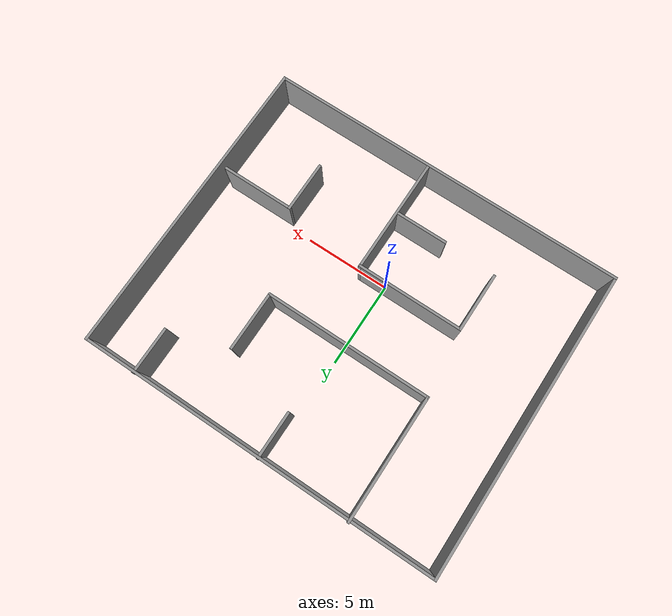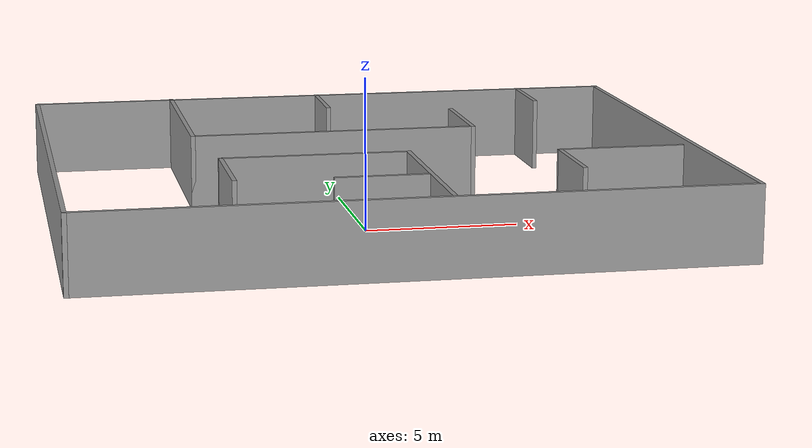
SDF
<?xml version='1.0'?>
<sdf version='1.7'>
  <model name='av_course.world'>
    <pose>0.500921 2.41741 0 0 -0 0</pose>
    <link name='Wall_0'>
      <collision name='Wall_0_Collision'>
        <geometry>
          <box>
            <size>17.75 0.15 2.5</size>
          </box>
        </geometry>
        <pose>0 0 1.25 0 -0 0</pose>
      </collision>
      <visual name='Wall_0_Visual'>
        <pose>0 0 1.25 0 -0 0</pose>
        <geometry>
          <box>
            <size>17.75 0.15 2.5</size>
          </box>
        </geometry>
        <material>
          <script>
            <uri>file://media/materials/scripts/gazebo.material</uri>
            <name>Gazebo/Grey</name>
          </script>
          <ambient>1 1 1 1</ambient>
        </material>
        <meta>
          <layer>0</layer>
        </meta>
      </visual>
      <pose>-10.425 -0.039543 0 0 -0 1.5708</pose>
    </link>
    <link name='Wall_1'>
      <collision name='Wall_1_Collision'>
        <geometry>
          <box>
            <size>21 0.15 2.5</size>
          </box>
        </geometry>
        <pose>0 0 1.25 0 -0 0</pose>
      </collision>
      <visual name='Wall_1_Visual'>
        <pose>0 0 1.25 0 -0 0</pose>
        <geometry>
          <box>
            <size>21 0.15 2.5</size>
          </box>
        </geometry>
        <material>
          <script>
            <uri>file://media/materials/scripts/gazebo.material</uri>
            <name>Gazebo/Grey</name>
          </script>
          <ambient>1 1 1 1</ambient>
        </material>
        <meta>
          <layer>0</layer>
        </meta>
      </visual>
      <pose>-0 8.76046 0 0 -0 0</pose>
    </link>
    <link name='Wall_10'>
      <collision name='Wall_10_Collision'>
        <geometry>
          <box>
            <size>3 0.15 2.5</size>
          </box>
        </geometry>
        <pose>0 0 1.25 0 -0 0</pose>
      </collision>
      <visual name='Wall_10_Visual'>
        <pose>0 0 1.25 0 -0 0</pose>
        <geometry>
          <box>
            <size>3 0.15 2.5</size>
          </box>
        </geometry>
        <material>
          <script>
            <uri>file://media/materials/scripts/gazebo.material</uri>
            <name>Gazebo/Grey</name>
          </script>
          <ambient>1 1 1 1</ambient>
        </material>
        <meta>
          <layer>0</layer>
        </meta>
      </visual>
      <pose>5.85247 -4.12339 0 0 -0 -1.5708</pose>
    </link>
    <link name='Wall_12'>
      <collision name='Wall_12_Collision'>
        <geometry>
          <box>
            <size>6.75 0.15 2.5</size>
          </box>
        </geometry>
        <pose>0 0 1.25 0 -0 0</pose>
      </collision>
      <visual name='Wall_12_Visual'>
        <pose>0 0 1.25 0 -0 0</pose>
        <geometry>
          <box>
            <size>6.75 0.15 2.5</size>
          </box>
        </geometry>
        <material>
          <script>
            <uri>file://media/materials/scripts/gazebo.material</uri>
            <name>Gazebo/Grey</name>
          </script>
          <ambient>1 1 1 1</ambient>
        </material>
        <meta>
          <layer>0</layer>
        </meta>
      </visual>
      <pose>0.973359 -5.39997 0 0 -0 1.5708</pose>
    </link>
    <link name='Wall_13'>
      <collision name='Wall_13_Collision'>
        <geometry>
          <box>
            <size>6.25 0.15 2.5</size>
          </box>
        </geometry>
        <pose>0 0 1.25 0 -0 0</pose>
      </collision>
      <visual name='Wall_13_Visual'>
        <pose>0 0 1.25 0 -0 0</pose>
        <geometry>
          <box>
            <size>6.25 0.15 2.5</size>
          </box>
        </geometry>
        <material>
          <script>
            <uri>file://media/materials/scripts/gazebo.material</uri>
            <name>Gazebo/Grey</name>
          </script>
          <ambient>1 1 1 1</ambient>
        </material>
        <meta>
          <layer>0</layer>
        </meta>
      </visual>
      <pose>-2.07664 -2.09997 0 0 -0 3.14159</pose>
    </link>
    <link name='Wall_14'>
      <collision name='Wall_14_Collision'>
        <geometry>
          <box>
            <size>3.5 0.15 2.5</size>
          </box>
        </geometry>
        <pose>0 0 1.25 0 -0 0</pose>
      </collision>
      <visual name='Wall_14_Visual'>
        <pose>0 0 1.25 0 -0 0</pose>
        <geometry>
          <box>
            <size>3.5 0.15 2.5</size>
          </box>
        </geometry>
        <material>
          <script>
            <uri>file://media/materials/scripts/gazebo.material</uri>
            <name>Gazebo/Grey</name>
          </script>
          <ambient>1 1 1 1</ambient>
        </material>
        <meta>
          <layer>0</layer>
        </meta>
      </visual>
      <pose>-5.12664 -3.77497 0 0 -0 -1.5708</pose>
    </link>
    <link name='Wall_16'>
      <collision name='Wall_16_Collision'>
        <geometry>
          <box>
            <size>3 0.15 2.5</size>
          </box>
        </geometry>
        <pose>0 0 1.25 0 -0 0</pose>
      </collision>
      <visual name='Wall_16_Visual'>
        <pose>0 0 1.25 0 -0 0</pose>
        <geometry>
          <box>
            <size>3 0.15 2.5</size>
          </box>
        </geometry>
        <material>
          <script>
            <uri>file://media/materials/scripts/gazebo.material</uri>
            <name>Gazebo/Grey</name>
          </script>
          <ambient>1 1 1 1</ambient>
        </material>
        <meta>
          <layer>0</layer>
        </meta>
      </visual>
      <pose>-0.591213 -5.62939 0 0 -0 3.14159</pose>
    </link>
    <link name='Wall_18'>
      <collision name='Wall_18_Collision'>
        <geometry>
          <box>
            <size>2.75 0.15 2.5</size>
          </box>
        </geometry>
        <pose>0 0 1.25 0 -0 0</pose>
      </collision>
      <visual name='Wall_18_Visual'>
        <pose>0 0 1.25 0 -0 0</pose>
        <geometry>
          <box>
            <size>2.75 0.15 2.5</size>
          </box>
        </geometry>
        <material>
          <script>
            <uri>file://media/materials/scripts/gazebo.material</uri>
            <name>Gazebo/Grey</name>
          </script>
          <ambient>1 1 1 1</ambient>
        </material>
        <meta>
          <layer>0</layer>
        </meta>
      </visual>
      <pose>7.39366 7.49302 0 0 -0 -1.5708</pose>
    </link>
    <link name='Wall_2'>
      <collision name='Wall_2_Collision'>
        <geometry>
          <box>
            <size>17.75 0.15 2.5</size>
          </box>
        </geometry>
        <pose>0 0 1.25 0 -0 0</pose>
      </collision>
      <visual name='Wall_2_Visual'>
        <pose>0 0 1.25 0 -0 0</pose>
        <geometry>
          <box>
            <size>17.75 0.15 2.5</size>
          </box>
        </geometry>
        <material>
          <script>
            <uri>file://media/materials/scripts/gazebo.material</uri>
            <name>Gazebo/Grey</name>
          </script>
          <ambient>1 1 1 1</ambient>
        </material>
        <meta>
          <layer>0</layer>
        </meta>
      </visual>
      <pose>10.425 -0.039543 0 0 -0 -1.5708</pose>
    </link>
    <link name='Wall_20'>
      <collision name='Wall_20_Collision'>
        <geometry>
          <box>
            <size>2.75 0.15 2.5</size>
          </box>
        </geometry>
        <pose>0 0 1.25 0 -0 0</pose>
      </collision>
      <visual name='Wall_20_Visual'>
        <pose>0 0 1.25 0 -0 0</pose>
        <geometry>
          <box>
            <size>2.75 0.15 2.5</size>
          </box>
        </geometry>
        <material>
          <script>
            <uri>file://media/materials/scripts/gazebo.material</uri>
            <name>Gazebo/Grey</name>
          </script>
          <ambient>1 1 1 1</ambient>
        </material>
        <meta>
          <layer>0</layer>
        </meta>
      </visual>
      <pose>-0.236263 7.49302 0 0 -0 -1.5708</pose>
    </link>
    <link name='Wall_3'>
      <collision name='Wall_3_Collision'>
        <geometry>
          <box>
            <size>21 0.15 2.5</size>
          </box>
        </geometry>
        <pose>0 0 1.25 0 -0 0</pose>
      </collision>
      <visual name='Wall_3_Visual'>
        <pose>0 0 1.25 0 -0 0</pose>
        <geometry>
          <box>
            <size>21 0.15 2.5</size>
          </box>
        </geometry>
        <material>
          <script>
            <uri>file://media/materials/scripts/gazebo.material</uri>
            <name>Gazebo/Grey</name>
          </script>
          <ambient>1 1 1 1</ambient>
        </material>
        <meta>
          <layer>0</layer>
        </meta>
      </visual>
      <pose>-0 -8.83954 0 0 -0 3.14159</pose>
    </link>
    <link name='Wall_5'>
      <collision name='Wall_5_Collision'>
        <geometry>
          <box>
            <size>7.25 0.15 2.5</size>
          </box>
        </geometry>
        <pose>0 0 1.25 0 -0 0</pose>
      </collision>
      <visual name='Wall_5_Visual'>
        <pose>0 0 1.25 0 -0 0</pose>
        <geometry>
          <box>
            <size>7.25 0.15 2.5</size>
          </box>
        </geometry>
        <material>
          <script>
            <uri>file://media/materials/scripts/gazebo.material</uri>
            <name>Gazebo/Grey</name>
          </script>
          <ambient>1 1 1 1</ambient>
        </material>
        <meta>
          <layer>0</layer>
        </meta>
      </visual>
      <pose>-5.58651 5.28954 0 0 -0 -1.5708</pose>
    </link>
    <link name='Wall_6'>
      <collision name='Wall_6_Collision'>
        <geometry>
          <box>
            <size>9.75 0.15 2.5</size>
          </box>
        </geometry>
        <pose>0 0 1.25 0 -0 0</pose>
      </collision>
      <visual name='Wall_6_Visual'>
        <pose>0 0 1.25 0 -0 0</pose>
        <geometry>
          <box>
            <size>9.75 0.15 2.5</size>
          </box>
        </geometry>
        <material>
          <script>
            <uri>file://media/materials/scripts/gazebo.material</uri>
            <name>Gazebo/Grey</name>
          </script>
          <ambient>1 1 1 1</ambient>
        </material>
        <meta>
          <layer>0</layer>
        </meta>
      </visual>
      <pose>-0.786513 1.73954 0 0 -0 0</pose>
    </link>
    <link name='Wall_7'>
      <collision name='Wall_7_Collision'>
        <geometry>
          <box>
            <size>3.5 0.15 2.5</size>
          </box>
        </geometry>
        <pose>0 0 1.25 0 -0 0</pose>
      </collision>
      <visual name='Wall_7_Visual'>
        <pose>0 0 1.25 0 -0 0</pose>
        <geometry>
          <box>
            <size>3.5 0.15 2.5</size>
          </box>
        </geometry>
        <material>
          <script>
            <uri>file://media/materials/scripts/gazebo.material</uri>
            <name>Gazebo/Grey</name>
          </script>
          <ambient>1 1 1 1</ambient>
        </material>
        <meta>
          <layer>0</layer>
        </meta>
      </visual>
      <pose>4.01349 3.41454 0 0 -0 1.5708</pose>
    </link>
    <link name='Wall_9'>
      <collision name='Wall_9_Collision'>
        <geometry>
          <box>
            <size>4.25 0.15 2.5</size>
          </box>
        </geometry>
        <pose>0 0 1.25 0 -0 0</pose>
      </collision>
      <visual name='Wall_9_Visual'>
        <pose>0 0 1.25 0 -0 0</pose>
        <geometry>
          <box>
            <size>4.25 0.15 2.5</size>
          </box>
        </geometry>
        <material>
          <script>
            <uri>file://media/materials/scripts/gazebo.material</uri>
            <name>Gazebo/Grey</name>
          </script>
          <ambient>1 1 1 1</ambient>
        </material>
        <meta>
          <layer>0</layer>
        </meta>
      </visual>
      <pose>7.90247 -2.69839 0 0 -0 3.14159</pose>
    </link>
    <static>1</static>
  </model>
</sdf>
